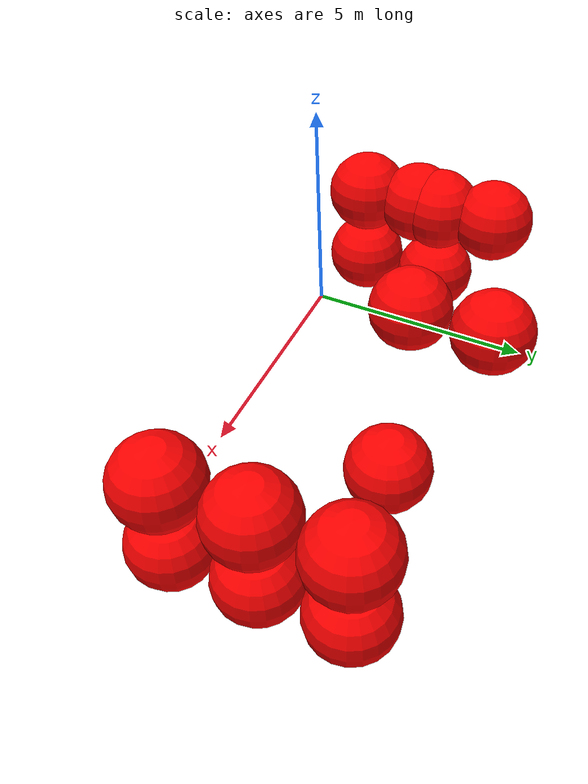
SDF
<sdf version="1.8">
 <world name="3d_world">
  <model name="obstacle_1" canonical_link="obstacle">
   <static>true</static>
   <pose relative_to="world">7.14 -0.04 -1.00 0 0 0</pose>
   <link name="obstacle">
    <pose relative_to="__model__">0.0 0 0.0 0 0 0</pose>
    <visual name="visual">
     <geometry><sphere><radius>1.00</radius></sphere></geometry>
     <material>
      <ambient>1.0 0.0 0.0 1</ambient>
      <diffuse>1.0 0.0 0.0 1</diffuse>
      <specular>1.0 0.0 0.0 1</specular>
     </material>
    </visual>
    <collision name="collision"><geometry><sphere><radius>1.00</radius></sphere></geometry></collision>
    <enable_gravity>false</enable_gravity>
   </link>
   <plugin filename="ignition-gazebo-velocity-control-system" name="ignition::gazebo::systems::VelocityControl">
    <initial_linear>0.00 0.00 0.00</initial_linear>
    <initial_angular>0 0 0</initial_angular>
   </plugin>
   <plugin filename="ignition-gazebo-odometry-publisher-system" name="ignition::gazebo::systems::OdometryPublisher">
    <dimensions>3</dimensions>
   </plugin>
  </model>
  <model name="obstacle_2" canonical_link="obstacle">
   <static>true</static>
   <pose relative_to="world">7.14 1.96 -1.00 0 0 0</pose>
   <link name="obstacle">
    <pose relative_to="__model__">0.0 0 0.0 0 0 0</pose>
    <visual name="visual">
     <geometry><sphere><radius>1.00</radius></sphere></geometry>
     <material>
      <ambient>1.0 0.0 0.0 1</ambient>
      <diffuse>1.0 0.0 0.0 1</diffuse>
      <specular>1.0 0.0 0.0 1</specular>
     </material>
    </visual>
    <collision name="collision"><geometry><sphere><radius>1.00</radius></sphere></geometry></collision>
    <enable_gravity>false</enable_gravity>
   </link>
   <plugin filename="ignition-gazebo-velocity-control-system" name="ignition::gazebo::systems::VelocityControl">
    <initial_linear>0.00 0.00 0.00</initial_linear>
    <initial_angular>0 0 0</initial_angular>
   </plugin>
   <plugin filename="ignition-gazebo-odometry-publisher-system" name="ignition::gazebo::systems::OdometryPublisher">
    <dimensions>3</dimensions>
   </plugin>
  </model>
  <model name="obstacle_3" canonical_link="obstacle">
   <static>true</static>
   <pose relative_to="world">7.14 3.96 -1.00 0 0 0</pose>
   <link name="obstacle">
    <pose relative_to="__model__">0.0 0 0.0 0 0 0</pose>
    <visual name="visual">
     <geometry><sphere><radius>1.00</radius></sphere></geometry>
     <material>
      <ambient>1.0 0.0 0.0 1</ambient>
      <diffuse>1.0 0.0 0.0 1</diffuse>
      <specular>1.0 0.0 0.0 1</specular>
     </material>
    </visual>
    <collision name="collision"><geometry><sphere><radius>1.00</radius></sphere></geometry></collision>
    <enable_gravity>false</enable_gravity>
   </link>
   <plugin filename="ignition-gazebo-velocity-control-system" name="ignition::gazebo::systems::VelocityControl">
    <initial_linear>0.00 0.00 0.00</initial_linear>
    <initial_angular>0 0 0</initial_angular>
   </plugin>
   <plugin filename="ignition-gazebo-odometry-publisher-system" name="ignition::gazebo::systems::OdometryPublisher">
    <dimensions>3</dimensions>
   </plugin>
  </model>
  <model name="obstacle_4" canonical_link="obstacle">
   <static>true</static>
   <pose relative_to="world">7.14 -0.04 1.00 0 0 0</pose>
   <link name="obstacle">
    <pose relative_to="__model__">0.0 0 0.0 0 0 0</pose>
    <visual name="visual">
     <geometry><sphere><radius>1.00</radius></sphere></geometry>
     <material>
      <ambient>1.0 0.0 0.0 1</ambient>
      <diffuse>1.0 0.0 0.0 1</diffuse>
      <specular>1.0 0.0 0.0 1</specular>
     </material>
    </visual>
    <collision name="collision"><geometry><sphere><radius>1.00</radius></sphere></geometry></collision>
    <enable_gravity>false</enable_gravity>
   </link>
   <plugin filename="ignition-gazebo-velocity-control-system" name="ignition::gazebo::systems::VelocityControl">
    <initial_linear>0.00 0.00 0.00</initial_linear>
    <initial_angular>0 0 0</initial_angular>
   </plugin>
   <plugin filename="ignition-gazebo-odometry-publisher-system" name="ignition::gazebo::systems::OdometryPublisher">
    <dimensions>3</dimensions>
   </plugin>
  </model>
  <model name="obstacle_5" canonical_link="obstacle">
   <static>true</static>
   <pose relative_to="world">7.14 1.96 1.00 0 0 0</pose>
   <link name="obstacle">
    <pose relative_to="__model__">0.0 0 0.0 0 0 0</pose>
    <visual name="visual">
     <geometry><sphere><radius>1.00</radius></sphere></geometry>
     <material>
      <ambient>1.0 0.0 0.0 1</ambient>
      <diffuse>1.0 0.0 0.0 1</diffuse>
      <specular>1.0 0.0 0.0 1</specular>
     </material>
    </visual>
    <collision name="collision"><geometry><sphere><radius>1.00</radius></sphere></geometry></collision>
    <enable_gravity>false</enable_gravity>
   </link>
   <plugin filename="ignition-gazebo-velocity-control-system" name="ignition::gazebo::systems::VelocityControl">
    <initial_linear>0.00 0.00 0.00</initial_linear>
    <initial_angular>0 0 0</initial_angular>
   </plugin>
   <plugin filename="ignition-gazebo-odometry-publisher-system" name="ignition::gazebo::systems::OdometryPublisher">
    <dimensions>3</dimensions>
   </plugin>
  </model>
  <model name="obstacle_6" canonical_link="obstacle">
   <static>true</static>
   <pose relative_to="world">7.14 3.96 1.00 0 0 0</pose>
   <link name="obstacle">
    <pose relative_to="__model__">0.0 0 0.0 0 0 0</pose>
    <visual name="visual">
     <geometry><sphere><radius>1.00</radius></sphere></geometry>
     <material>
      <ambient>1.0 0.0 0.0 1</ambient>
      <diffuse>1.0 0.0 0.0 1</diffuse>
      <specular>1.0 0.0 0.0 1</specular>
     </material>
    </visual>
    <collision name="collision"><geometry><sphere><radius>1.00</radius></sphere></geometry></collision>
    <enable_gravity>false</enable_gravity>
   </link>
   <plugin filename="ignition-gazebo-velocity-control-system" name="ignition::gazebo::systems::VelocityControl">
    <initial_linear>0.00 0.00 0.00</initial_linear>
    <initial_angular>0 0 0</initial_angular>
   </plugin>
   <plugin filename="ignition-gazebo-odometry-publisher-system" name="ignition::gazebo::systems::OdometryPublisher">
    <dimensions>3</dimensions>
   </plugin>
  </model>
  <model name="obstacle_15" canonical_link="obstacle">
   <static>true</static>
   <pose relative_to="world">-3.28 -0.17 -1.00 0 0 0</pose>
   <link name="obstacle">
    <pose relative_to="__model__">0.0 0 0.0 0 0 0</pose>
    <visual name="visual">
     <geometry><sphere><radius>1.00</radius></sphere></geometry>
     <material>
      <ambient>1.0 0.0 0.0 1</ambient>
      <diffuse>1.0 0.0 0.0 1</diffuse>
      <specular>1.0 0.0 0.0 1</specular>
     </material>
    </visual>
    <collision name="collision"><geometry><sphere><radius>1.00</radius></sphere></geometry></collision>
    <enable_gravity>false</enable_gravity>
   </link>
   <plugin filename="ignition-gazebo-velocity-control-system" name="ignition::gazebo::systems::VelocityControl">
    <initial_linear>0.00 0.00 0.00</initial_linear>
    <initial_angular>0 0 0</initial_angular>
   </plugin>
   <plugin filename="ignition-gazebo-odometry-publisher-system" name="ignition::gazebo::systems::OdometryPublisher">
    <dimensions>3</dimensions>
   </plugin>
  </model>
  <model name="obstacle_16" canonical_link="obstacle">
   <static>true</static>
   <pose relative_to="world">-3.28 1.83 -1.00 0 0 0</pose>
   <link name="obstacle">
    <pose relative_to="__model__">0.0 0 0.0 0 0 0</pose>
    <visual name="visual">
     <geometry><sphere><radius>1.00</radius></sphere></geometry>
     <material>
      <ambient>1.0 0.0 0.0 1</ambient>
      <diffuse>1.0 0.0 0.0 1</diffuse>
      <specular>1.0 0.0 0.0 1</specular>
     </material>
    </visual>
    <collision name="collision"><geometry><sphere><radius>1.00</radius></sphere></geometry></collision>
    <enable_gravity>false</enable_gravity>
   </link>
   <plugin filename="ignition-gazebo-velocity-control-system" name="ignition::gazebo::systems::VelocityControl">
    <initial_linear>0.00 0.00 0.00</initial_linear>
    <initial_angular>0 0 0</initial_angular>
   </plugin>
   <plugin filename="ignition-gazebo-odometry-publisher-system" name="ignition::gazebo::systems::OdometryPublisher">
    <dimensions>3</dimensions>
   </plugin>
  </model>
  <model name="obstacle_17" canonical_link="obstacle">
   <static>true</static>
   <pose relative_to="world">-3.28 -0.17 1.00 0 0 0</pose>
   <link name="obstacle">
    <pose relative_to="__model__">0.0 0 0.0 0 0 0</pose>
    <visual name="visual">
     <geometry><sphere><radius>1.00</radius></sphere></geometry>
     <material>
      <ambient>1.0 0.0 0.0 1</ambient>
      <diffuse>1.0 0.0 0.0 1</diffuse>
      <specular>1.0 0.0 0.0 1</specular>
     </material>
    </visual>
    <collision name="collision"><geometry><sphere><radius>1.00</radius></sphere></geometry></collision>
    <enable_gravity>false</enable_gravity>
   </link>
   <plugin filename="ignition-gazebo-velocity-control-system" name="ignition::gazebo::systems::VelocityControl">
    <initial_linear>0.00 0.00 0.00</initial_linear>
    <initial_angular>0 0 0</initial_angular>
   </plugin>
   <plugin filename="ignition-gazebo-odometry-publisher-system" name="ignition::gazebo::systems::OdometryPublisher">
    <dimensions>3</dimensions>
   </plugin>
  </model>
  <model name="obstacle_18" canonical_link="obstacle">
   <static>true</static>
   <pose relative_to="world">-3.28 1.83 1.00 0 0 0</pose>
   <link name="obstacle">
    <pose relative_to="__model__">0.0 0 0.0 0 0 0</pose>
    <visual name="visual">
     <geometry><sphere><radius>1.00</radius></sphere></geometry>
     <material>
      <ambient>1.0 0.0 0.0 1</ambient>
      <diffuse>1.0 0.0 0.0 1</diffuse>
      <specular>1.0 0.0 0.0 1</specular>
     </material>
    </visual>
    <collision name="collision"><geometry><sphere><radius>1.00</radius></sphere></geometry></collision>
    <enable_gravity>false</enable_gravity>
   </link>
   <plugin filename="ignition-gazebo-velocity-control-system" name="ignition::gazebo::systems::VelocityControl">
    <initial_linear>0.00 0.00 0.00</initial_linear>
    <initial_angular>0 0 0</initial_angular>
   </plugin>
   <plugin filename="ignition-gazebo-odometry-publisher-system" name="ignition::gazebo::systems::OdometryPublisher">
    <dimensions>3</dimensions>
   </plugin>
  </model>
  <model name="obstacle_25" canonical_link="obstacle">
   <static>true</static>
   <pose relative_to="world">-3.34 1.23 1.00 0 0 0</pose>
   <link name="obstacle">
    <pose relative_to="__model__">0.0 0 0.0 0 0 0</pose>
    <visual name="visual">
     <geometry><sphere><radius>1.00</radius></sphere></geometry>
     <material>
      <ambient>1.0 0.0 0.0 1</ambient>
      <diffuse>1.0 0.0 0.0 1</diffuse>
      <specular>1.0 0.0 0.0 1</specular>
     </material>
    </visual>
    <collision name="collision"><geometry><sphere><radius>1.00</radius></sphere></geometry></collision>
    <enable_gravity>false</enable_gravity>
   </link>
   <plugin filename="ignition-gazebo-velocity-control-system" name="ignition::gazebo::systems::VelocityControl">
    <initial_linear>0.00 0.00 0.00</initial_linear>
    <initial_angular>0 0 0</initial_angular>
   </plugin>
   <plugin filename="ignition-gazebo-odometry-publisher-system" name="ignition::gazebo::systems::OdometryPublisher">
    <dimensions>3</dimensions>
   </plugin>
  </model>
  <model name="obstacle_26" canonical_link="obstacle">
   <static>true</static>
   <pose relative_to="world">-3.34 3.23 1.00 0 0 0</pose>
   <link name="obstacle">
    <pose relative_to="__model__">0.0 0 0.0 0 0 0</pose>
    <visual name="visual">
     <geometry><sphere><radius>1.00</radius></sphere></geometry>
     <material>
      <ambient>1.0 0.0 0.0 1</ambient>
      <diffuse>1.0 0.0 0.0 1</diffuse>
      <specular>1.0 0.0 0.0 1</specular>
     </material>
    </visual>
    <collision name="collision"><geometry><sphere><radius>1.00</radius></sphere></geometry></collision>
    <enable_gravity>false</enable_gravity>
   </link>
   <plugin filename="ignition-gazebo-velocity-control-system" name="ignition::gazebo::systems::VelocityControl">
    <initial_linear>0.00 0.00 0.00</initial_linear>
    <initial_angular>0 0 0</initial_angular>
   </plugin>
   <plugin filename="ignition-gazebo-odometry-publisher-system" name="ignition::gazebo::systems::OdometryPublisher">
    <dimensions>3</dimensions>
   </plugin>
  </model>
  <model name="obstacle_27" canonical_link="obstacle">
   <static>false</static>
   <pose relative_to="world">3.59 3.27 -1.00 0 0 0</pose>
   <link name="obstacle">
    <pose relative_to="__model__">0.0 0 0.0 0 0 0</pose>
    <visual name="visual">
     <geometry><sphere><radius>1.00</radius></sphere></geometry>
     <material>
      <ambient>1.0 0.0 0.0 1</ambient>
      <diffuse>1.0 0.0 0.0 1</diffuse>
      <specular>1.0 0.0 0.0 1</specular>
     </material>
    </visual>
    <collision name="collision"><geometry><sphere><radius>1.00</radius></sphere></geometry></collision>
    <enable_gravity>false</enable_gravity>
   </link>
   <plugin filename="ignition-gazebo-velocity-control-system" name="ignition::gazebo::systems::VelocityControl">
    <initial_linear>0.00 -0.99 0.36</initial_linear>
    <initial_angular>0 0 0</initial_angular>
   </plugin>
   <plugin filename="ignition-gazebo-odometry-publisher-system" name="ignition::gazebo::systems::OdometryPublisher">
    <dimensions>3</dimensions>
   </plugin>
  </model>
  <model name="obstacle_28" canonical_link="obstacle">
   <static>false</static>
   <pose relative_to="world">0.22 2.40 0.63 0 0 0</pose>
   <link name="obstacle">
    <pose relative_to="__model__">0.0 0 0.0 0 0 0</pose>
    <visual name="visual">
     <geometry><sphere><radius>1.00</radius></sphere></geometry>
     <material>
      <ambient>1.0 0.0 0.0 1</ambient>
      <diffuse>1.0 0.0 0.0 1</diffuse>
      <specular>1.0 0.0 0.0 1</specular>
     </material>
    </visual>
    <collision name="collision"><geometry><sphere><radius>1.00</radius></sphere></geometry></collision>
    <enable_gravity>false</enable_gravity>
   </link>
   <plugin filename="ignition-gazebo-velocity-control-system" name="ignition::gazebo::systems::VelocityControl">
    <initial_linear>0.00 -1.71 -0.28</initial_linear>
    <initial_angular>0 0 0</initial_angular>
   </plugin>
   <plugin filename="ignition-gazebo-odometry-publisher-system" name="ignition::gazebo::systems::OdometryPublisher">
    <dimensions>3</dimensions>
   </plugin>
  </model>
  <model name="obstacle_29" canonical_link="obstacle">
   <static>false</static>
   <pose relative_to="world">0.22 4.40 0.63 0 0 0</pose>
   <link name="obstacle">
    <pose relative_to="__model__">0.0 0 0.0 0 0 0</pose>
    <visual name="visual">
     <geometry><sphere><radius>1.00</radius></sphere></geometry>
     <material>
      <ambient>1.0 0.0 0.0 1</ambient>
      <diffuse>1.0 0.0 0.0 1</diffuse>
      <specular>1.0 0.0 0.0 1</specular>
     </material>
    </visual>
    <collision name="collision"><geometry><sphere><radius>1.00</radius></sphere></geometry></collision>
    <enable_gravity>false</enable_gravity>
   </link>
   <plugin filename="ignition-gazebo-velocity-control-system" name="ignition::gazebo::systems::VelocityControl">
    <initial_linear>0.00 -1.71 -0.28</initial_linear>
    <initial_angular>0 0 0</initial_angular>
   </plugin>
   <plugin filename="ignition-gazebo-odometry-publisher-system" name="ignition::gazebo::systems::OdometryPublisher">
    <dimensions>3</dimensions>
   </plugin>
  </model>
 </world>
</sdf>
